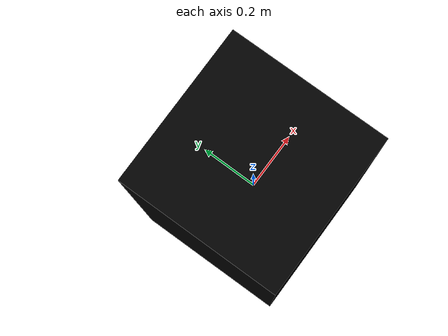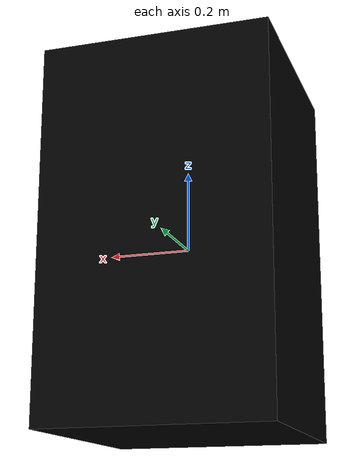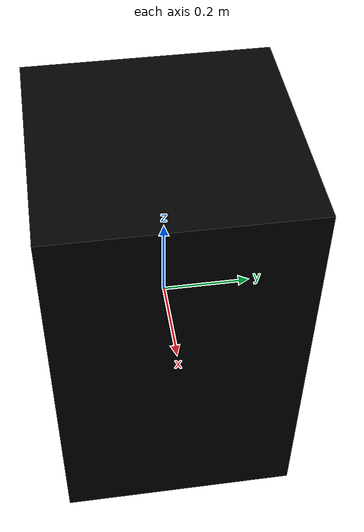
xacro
<?xml version="1.0"?>
<robot xmlns:xacro="http://www.ros.org/wiki/xacro" name="obstacle">
  <!-- Parameters -->
  <xacro:arg name="name" default="obstacle"/>
  <xacro:arg name="width" default="0.55"/>
  <xacro:arg name="depth" default="0.55"/>
  <xacro:arg name="height" default="0.9"/>

  <link name="$(arg name)_link">
    <visual>
      <geometry>
        <box size="$(arg width) $(arg depth) $(arg height)"/>
      </geometry>
      <material name="black">
        <color rgba="0 0 0 1"/>
      </material>
    </visual>
    <collision>
      <geometry>
        <box size="$(arg width) $(arg depth) $(arg height)"/>
      </geometry>
    </collision>
    <inertial>
      <mass value="10.0"/>
      <inertia ixx="1.0" ixy="0.0" ixz="0.0" iyy="1.0" iyz="0.0" izz="1.0"/>
    </inertial>
  </link>

  <gazebo reference="$(arg name)_link">
    <static>true</static>
    <material>Gazebo/Black</material>
  </gazebo>
</robot>
